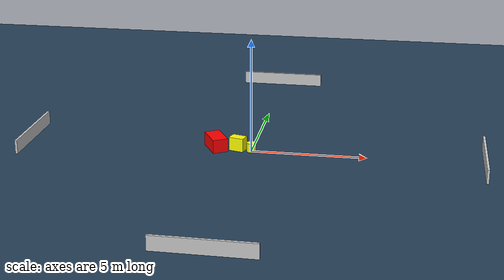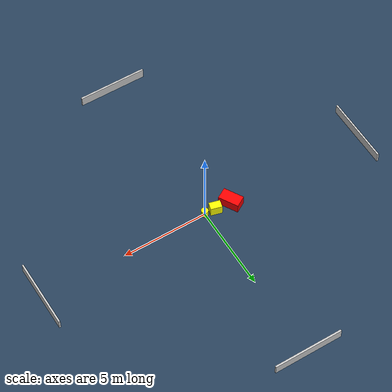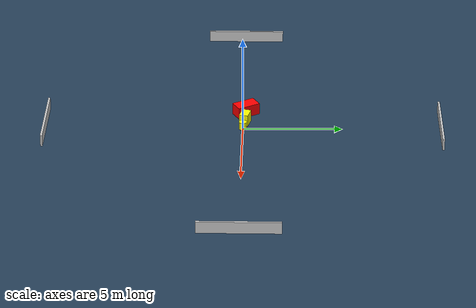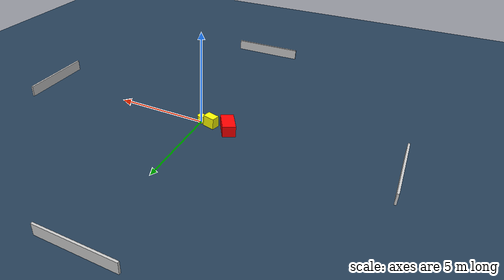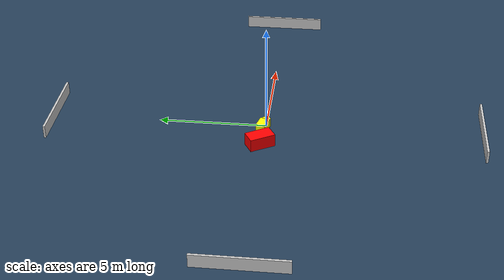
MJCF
<?xml version="1.0" ?>
<mujoco model="generated_environment">
  <option timestep="0.01" integrator="RK4" cone="elliptic"/>
  <default>
    <geom density="1"/>
  </default>
  <asset>
    <texture builtin="gradient" height="3072" name="skybox" rgb1="0.3 0.5 0.7" rgb2="0 0 0" type="skybox" width="512"/>
    <texture builtin="checker" height="300" name="groundplane" rgb1="0.2 0.3 0.4" rgb2="0.1 0.2 0.3" type="2d" width="300"/>
    <material name="groundplane" reflectance="0.2" texrepeat="5 5" texture="groundplane"/>
  </asset>
  <worldbody>
    <light dir="0 0 -1" directional="true" pos="0 0 1.5"/>
    <geom condim="3" friction="0.5 0.005 0.001" material="groundplane" name="floor" pos="0 0 0" size="0 0 0.05" type="plane"/>
    <body name="walls">
      <geom name="wall_1" condim="4" pos="-10.0 0.0 0.3" rgba="0.800000011920929 0.800000011920929 0.800000011920929 1.0" size="0.05 2.0 0.3" type="box"/>
      <geom name="wall_2" condim="4" pos="10.0 0.0 0.3" rgba="0.800000011920929 0.800000011920929 0.800000011920929 1.0" size="0.05 2.0 0.3" type="box"/>
      <geom name="wall_3" condim="4" pos="0.0 -10.0 0.3" rgba="0.800000011920929 0.800000011920929 0.800000011920929 1.0" size="2.0 0.05 0.3" type="box"/>
      <geom name="wall_4" condim="4" pos="0.0 10.0 0.3" rgba="0.800000011920929 0.800000011920929 0.800000011920929 1.0" size="2.0 0.05 0.3" type="box"/>
    </body>
    <body name="robot">
      <joint name="joint_x" type="slide" pos="0 0 0" axis="1 0 0"/>
      <joint name="joint_y" type="slide" pos="0 0 0" axis="0 1 0"/>
      <geom name="robot" type="cylinder" pos="0.0 0.0 0.2" size="0.2 0.2 0.0" mass="5.0" friction="1.0 0.005 0.0001" condim="4" rgba="1.0 1.0 0.0 1.0"/>
    </body>
    <body name="obstacle_1_movable">
      <geom name="obstacle_1_movable" condim="4" pos="-0.609783371781671 0.10600623662432332 0.3" euler="0 0 165.0458949684842" friction="0.0 0.005 0.001" rgba="1.0 1.0 0.0 1.0" size="0.32815399168811943 0.22384866100315365 0.3" type="box" mass="0.1"/>
      <joint type="free"/>
    </body>
    <body name="obstacle_2_static">
      <geom name="obstacle_2_static" condim="4" pos="-1.5896232829031947 0.12881234092841584 0.3" euler="0 0 299.9915396204016" friction="0.0 0.005 0.001" rgba="1.0 0.0 0.0 1.0" size="0.5979211483677441 0.3407717175093736 0.3" type="box"/>
    </body>
  </worldbody>
  <actuator>
    <motor name="actuator_x" joint="joint_x" gear="1" ctrlrange="-1 1"/>
    <motor name="actuator_y" joint="joint_y" gear="1" ctrlrange="-1 1"/>
  </actuator>
</mujoco>
